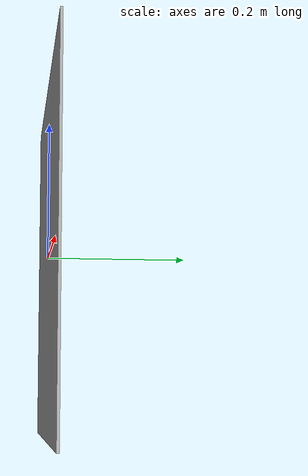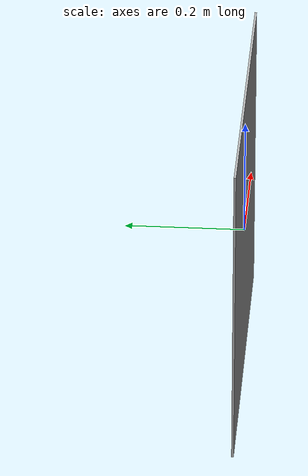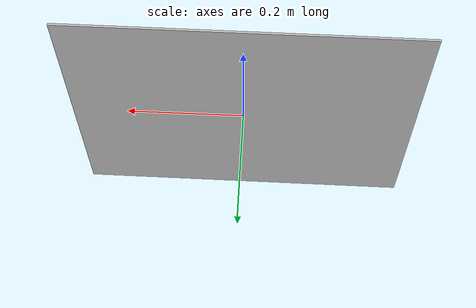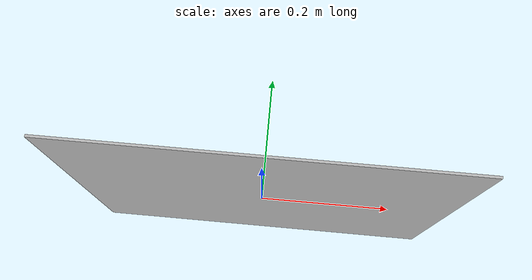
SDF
<?xml version="1.0" ?>
<sdf version="1.5">
  <model name="Elephant">
    <static>true</static>
    <link name="link">
      <pose>0 0 0 0 0 0</pose>
      <collision name="collision">
        <geometry>
          <box>
            <size>.5895 0.0036 .5223</size>
          </box>
        </geometry>
      </collision>
      <visual name="visual">
        <cast_shadows>false</cast_shadows>
        <geometry>
          <box>
            <size>.5895 0.0036 .5223</size>
          </box>
        </geometry>
        <material>
          <script>
            <uri>model://Elephant/materials/scripts</uri>
            <uri>model://Elephant/materials/textures</uri>
            <name>vrc/Elephant</name>
          </script>
        </material>
      </visual>
    </link>
  </model>
</sdf>
